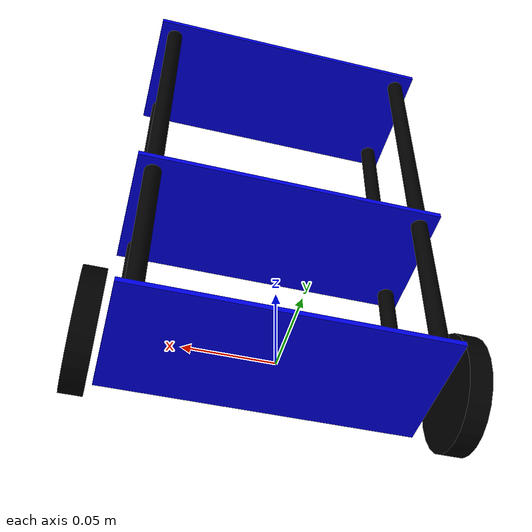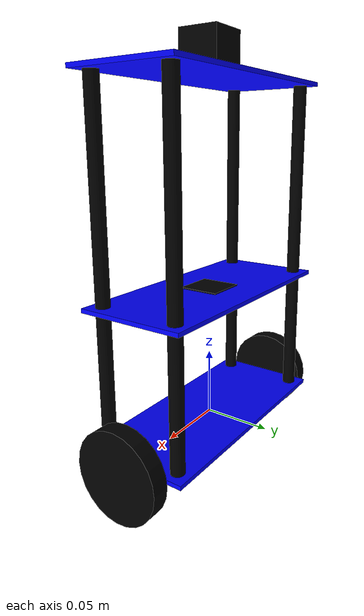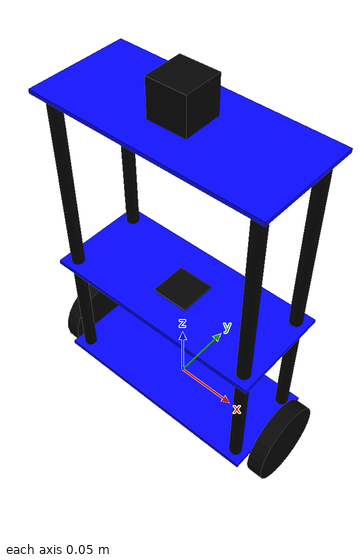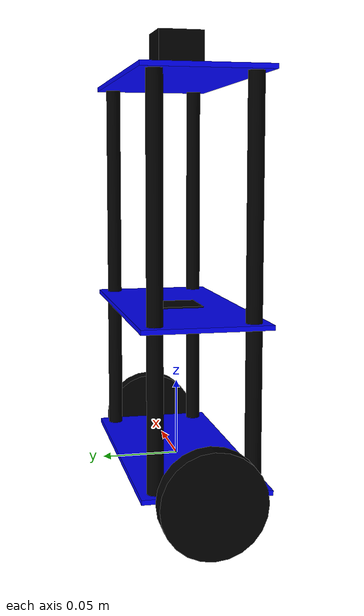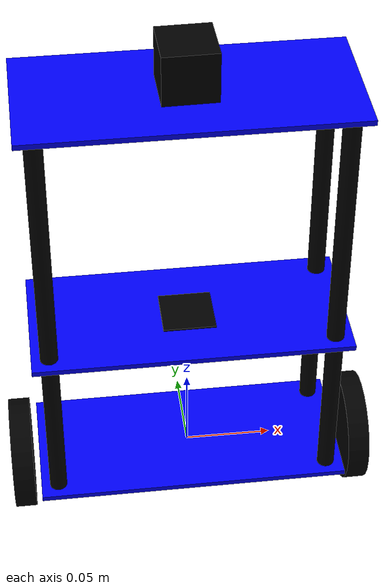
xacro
<?xml version="1.0" ?>
    <robot name="twsbr">

         <link name="base_footprint" />

         <link name="base_link">
             <visual>
                 <geometry>
                    <box size="0.18 0.08 0.003" />
                 </geometry>
                 <material name="blue">
                    <color rgba="0 0 1 1" />
                 </material>
             </visual>
             <collision>
                 <geometry>
                     <box size="0.18 0.08 0.003" />
                 </geometry>
             </collision>
             <inertial>
                 <mass value="0.40" />
                 <inertia  ixx="0"        iyx="0"          izx="0"
                           ixy="0"        iyy="0"          izy="0"
                           ixz="0"        iyz="0"          izz="0.0012933" />
             </inertial>
         </link>

         <joint name="base_joint" type="fixed">
             <parent link="base_footprint" />
             <child  link="base_link" />
             <origin xyz ="0 0 0" rpy="0 0 0" />
         </joint>

         <link name="first_level">
             <visual>
                 <geometry>
                     <box size="0.18 0.08 0.003" />
                 </geometry>
                 <material name="blue" />
             </visual>
             <collision>
                 <geometry>
                     <box size="0.18 0.08 0.003" />
                 </geometry>
             </collision>
             <inertial>
                 <mass value="0.25" />
                 <inertia  ixx="0.0008333"   iyx="0"         izx="0"
                           ixy="0"           iyy="0.0008333" izy="0"
                           ixz="0"           iyz="0"         izz="0.0012933" />
             </inertial>
         </link>

         <joint name="first_base_joint" type="fixed">
             <parent link="base_link" />
             <child  link="first_level" />
             <origin xyz ="0 0 0.10" rpy="0 0 0" />
         </joint>

         <link name="second_level">
             <visual>
                 <geometry>
                     <box size="0.18 0.08 0.003" />
                 </geometry>
                 <material name="blue" />
             </visual>
            <collision>
                 <geometry>
                     <box size="0.18 0.08 0.003" />
                 </geometry>
             </collision>
             <inertial>
                 <mass value="0.20" />
                 <inertia  ixx="0.0042"    iyx="0"           izx="0"
                           ixy="0"         iyy="0.0042"    izy="0"
                           ixz="0"         iyz="0"        izz="0.0012933" />
             </inertial>
         </link>

         <joint name="second_base_joint" type="fixed">
             <parent link="base_link" />
             <child  link="second_level" />
             <origin xyz ="0 0 0.25" rpy="0 0 0" />
         </joint>

         <link name="cylinder_1">
             <visual>
                 <geometry>
                     <cylinder length="0.25" radius="0.005" />
                 </geometry>
                 <material name="black">
                     <color rgba="0 0 0 1" />
                 </material>
             </visual>
            <collision>
                <geometry>
                    <cylinder length="0.25" radius="0.005" />
                </geometry>
            </collision>
            <inertial>
                <mass value="0.0625" />
                <inertia  ixx="0.0013"   iyx="0"        izx="0"
                          ixy="0"        iyy="0.0013"   izy="0"
                          ixz="0"        iyz="0"        izz="5.20833e-7" />
            </inertial>
         </link>

         <joint name="cylynder1_base_joint" type="fixed">
             <parent link="base_link" />
             <child  link="cylinder_1" />
             <origin xyz ="0.08 0.03 0.125" rpy="0 0 0" />
         </joint>

         <link name="cylinder_2">
             <visual>
                 <geometry>
                     <cylinder radius="0.005" length="0.25" />
                 </geometry>
                 <material name="black" />
             </visual>
            <collision>
                <geometry>
                    <cylinder length="0.25" radius="0.005" />
                </geometry>
            </collision>
            <inertial>
                <mass value="0.0625" />
                <inertia  ixx="0.0013" iyx="0"        izx="0"
                          ixy="0"        iyy="0.0013" izy="0"
                          ixz="0"        iyz="0"        izz="5.20833e-7" />
            </inertial>
         </link>

         <joint name="cylinder2_base_joint" type="fixed">
             <parent link="base_link" />
             <child  link="cylinder_2" />
             <origin xyz ="0.08 -0.03 0.125" rpy0="0 0 0" />
         </joint>

         <link name="cylinder_3">
             <visual>
                 <geometry>
                     <cylinder radius="0.005" length="0.25" />
                 </geometry>
                 <material name="black" />
             </visual>
            <collision>
                <geometry>
                    <cylinder length="0.25" radius="0.005" />
                </geometry>
            </collision>
            <inertial>
                <mass value="0.0625" />
                <inertia  ixx="0.0013" iyx="0"        izx="0"
                          ixy="0"        iyy="0.0013" izy="0"
                          ixz="0"        iyz="0"        izz="5.20833e-7" />
            </inertial>
         </link>

         <joint name="cylinder3_base_joint" type="fixed">
             <parent link="base_link" />
             <child  link="cylinder_3" />
             <origin xyz ="-0.08 0.03 0.125" rpy0="0 0 0" />
         </joint>

         <link name="cylinder_4">
             <visual>
                 <geometry>
                     <cylinder radius="0.005" length="0.25" />
                 </geometry>
                 <material name="black" />
             </visual>
            <collision>
                <geometry>
                    <cylinder length="0.25" radius="0.005" />
                </geometry>
            </collision>
            <inertial>
                <mass value="0.0625" />
                <inertia  ixx="0.0013" iyx="0"        izx="0"
                          ixy="0"        iyy="0.0013" izy="0"
                          ixz="0"        iyz="0"        izz="5.20833e-7" />
            </inertial>
         </link>

         <joint name="cylinder4_base_joint" type="fixed">
             <parent link="base_link" />
             <child  link="cylinder_4" />
             <origin xyz ="-0.08 -0.03 0.125" rpy0="0 0 0" />
         </joint>

         <link name="right_wheel">
             <visual>
                 <geometry>
                      <cylinder length="0.0125" radius="0.0325" />
                 </geometry>
                 <material name="black" />
             </visual>
             <collision>
                <geometry>
                    <cylinder length="0.0125" radius="0.0325" />
                </geometry>
            </collision>
            <inertial>
                <mass value="0.1" />
                <inertia  ixx="5.28125e-5" iyx="0"          izx="0"
                          ixy="0"          iyy="2.77083e-5" izy="0"
                          ixz="0"          iyz="0"          izz="2.77083e-5" />
            </inertial>
         </link>

         <joint name="right_wheel_base_joint" type="continuous">
              <axis xyz="0 0 1"/>
              <parent link="base_link" />
              <child  link="right_wheel" />
              <origin xyz ="0.10 0 0" rpy="-1.5708 0 -1.5708" />
         </joint>

        <link name="left_wheel">
            <visual>
                <geometry>
                     <cylinder length="0.0125" radius="0.0325" />
                </geometry>
                <material name="black" />
            </visual>
            <collision>
                 <geometry>
                     <cylinder length="0.0125" radius="0.0325" />
                 </geometry>
             </collision>
             <inertial>
                 <mass value="0.1" />
                 <inertia  ixx="5.28125e-5" iyx="0"        izx="0"
                           ixy="0"          iyy="2.77083e-5" izy="0"
                           ixz="0"          iyz="0"          izz="2.77083e-5" />
             </inertial>
        </link>

        <joint name="left_wheel_base_joint" type="continuous">
             <axis xyz="0 0 1"/>
             <parent link="base_link" />
             <child  link="left_wheel" />
             <origin xyz ="-0.10 0 0" rpy="-1.5708 0 -1.5708" />
        </joint>

        <!-- imu -->
        <link name="imu_link">
            <visual>
                <geometry>
                    <box size="0.03 0.03 0.003" />
                </geometry>
                <material name="black" />
            </visual>
            <collision>
                <geometry>
                    <box size="0.03 0.03 0.003" />
                </geometry>
                <inertial>
                    <mass value="0.005" />
                    <inertia  ixx="1.66e-5" iyx="0"        izx="0"
                              ixy="0"        iyy="1.66e-5" izy="0"
                              ixz="0"        iyz="0"        izz="3.75e-7" />
                </inertial>
            </collision>
        </link>

        <joint name="imu_first_level_joint" type="fixed">
            <parent link="first_level" />
            <child  link="imu_link"  />
            <axis   xyz ="0 0 0" />
            <origin xyz ="0 0 0.001" rpy="0 0 0" />
        </joint>

        <!-- Telecamera -->
        <link name="camera_link">
            <visual>
                <geometry>
                   <box size="0.03 0.03 0.03" />
                </geometry>
                <material name="black" />
            </visual>
            <collision>
                <geometry>
                   <box size="0.03 0.03 0.03" />
                </geometry>
                <inertial>
                    <mass value="0.05" />
                    <inertia  ixx="0.001041" iyx="0"        izx="0"
                              ixy="0"         iyy="0.001041" izy="0"
                              ixz="0"         iyz="0"        izz="3.75e-6" />
                </inertial>
            </collision>
        </link>

        <joint name="camera_base_link_joint" type="fixed">
            <parent link="second_level" />
            <child  link="camera_link" />
            <origin xyz="0 0 0.015" rpy="0 0 1.5908" />
        </joint>

        <!-- Send Colors to Gazebo Elements -->

        <gazebo reference="camera_link">
            <material>Gazebo/Black</material>
        </gazebo>

        <gazebo reference="right_wheel">
            <material>Gazebo/Black</material>
        </gazebo>

        <gazebo reference="left_wheel">
            <material>Gazebo/Black</material>
        </gazebo>

        <gazebo reference="cylinder_1">
            <material>Gazebo/Black</material>
        </gazebo>

        <gazebo reference="cylinder_2">
            <material>Gazebo/Black</material>
        </gazebo>

        <gazebo reference="cylinder_3">
            <material>Gazebo/Black</material>
        </gazebo>

        <gazebo reference="cylinder_4">
            <material>Gazebo/Black</material>
        </gazebo>

        <gazebo reference="base_link">
            <material>Gazebo/Blue</material>
        </gazebo>

        <gazebo reference="first_level">
            <material>Gazebo/Blue</material>
        </gazebo>

        <gazebo reference="second_level">
            <material>Gazebo/Blue</material>
        </gazebo>

        <gazebo reference="imu_link">
            <material>Gazebo/Black</material>
        </gazebo>

        <!-- Load Plugin -->

        <gazebo reference="camera_link">
            <sensor type="camera" name="camera1">
            <update_rate>30.0</update_rate>
            <camera name="head">
              <horizontal_fov>1.3962634</horizontal_fov>
              <image>
                <width>800</width>
                <height>800</height>
                <format>R8G8B8</format>
              </image>
              <clip>
              <near>0.02</near>
              <far>300</far>
              </clip>
              <noise>
                <type>gaussian</type>
                <!-- Noise is sampled independently per pixel on each frame.
                That pixel's noise value is added to each of its color
                channels, which at that point lie in the range [0,1]. -->
                <mean>0.0</mean>
                <stddev>0.007</stddev>
              </noise>
            </camera>
            <plugin name="camera_controller" filename="libgazebo_ros_camera.so">
              <alwaysOn>true</alwaysOn>
              <updateRate>0.0</updateRate>
              <cameraName>rrbot/camera1</cameraName>
              <imageTopicName>image_raw</imageTopicName>
              <cameraInfoTopicName>camera_info</cameraInfoTopicName>
              <frameName>camera_link</frameName>
              <hackBaseline>0.07</hackBaseline>
              <distortionK1>0.0</distortionK1>
              <distortionK2>0.0</distortionK2>
              <distortionK3>0.0</distortionK3>
              <distortionT1>0.0</distortionT1>
              <distortionT2>0.0</distortionT2>
            </plugin>
            </sensor>
        </gazebo>

        <!-- imu _sensor -->
        <gazebo reference="imu_link">
            <gravity>true</gravity>
            <sensor type="imu" name="imu_sensor">
                <plugin filename="libgazebo_ros_imu_sensor.so" name="imu_plugin">
                    <alwaysOn>true</alwaysOn>
                    <topicName>imu</topicName>
                    <updateRateHZ>100.0</updateRateHZ>
                    <bodyName>imu_link</bodyName>
                    <noise>
                        <type>gaussian</type>
                        <mean>0.0</mean>
                        <stddev>0.005</stddev>
                    </noise>
                    <gaussianNoise>0.0</gaussianNoise>
                    <xyzOffset>0 0 0</xyzOffset>
                    <rpyOffset>0 0 0</rpyOffset>
                    <frameName>imu_link</frameName>
                    <initialOrientationAsReference>false</initialOrientationAsReference>
                </plugin>
                <pose>0 0 0 0 0 0</pose>
            </sensor>
        </gazebo>

        <gazebo>
          <plugin name="differential_drive_controller" filename="libgazebo_ros_diff_drive.so">
          <commandTopic>cmd_vel</commandTopic>
          <odometryTopic>odom</odometryTopic>
          <odometryFrame>odom</odometryFrame>
          <leftJoint>left_wheel_base_joint</leftJoint>
          <rightJoint>right_wheel_base_joint</rightJoint>
          <robotBaseFrame>base_link</robotBaseFrame>
          <wheelSeparation>0.22</wheelSeparation>
          <wheelDiameter>0.06</wheelDiameter>
          <wheelTorque>100</wheelTorque>
          <publishWheelJointState>true</publishWheelJointState>
          </plugin>
        </gazebo>

    </robot>
